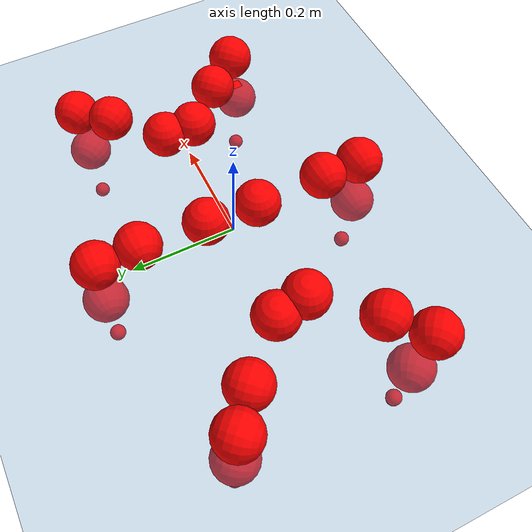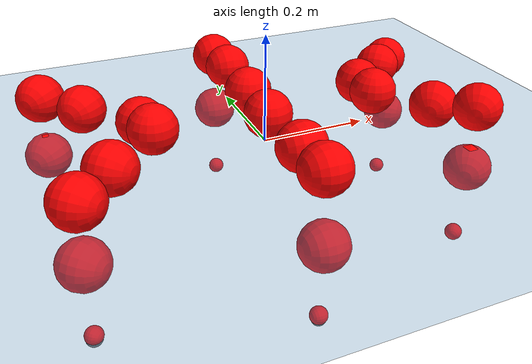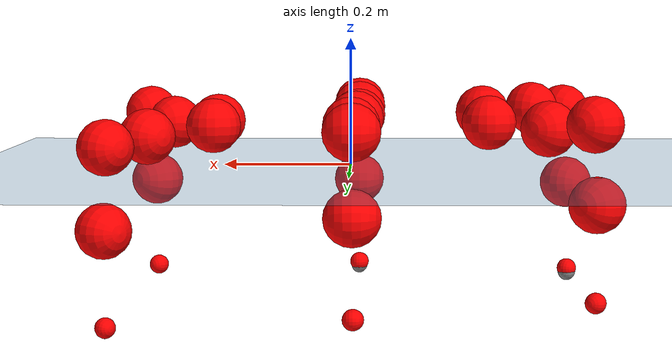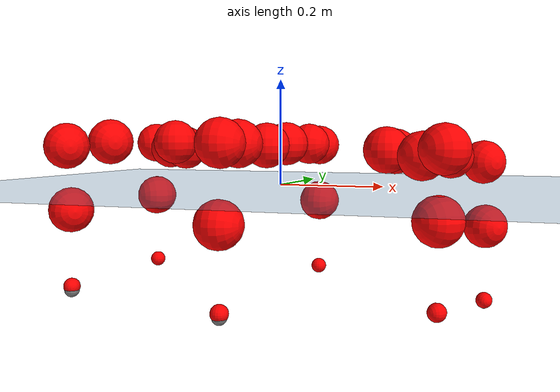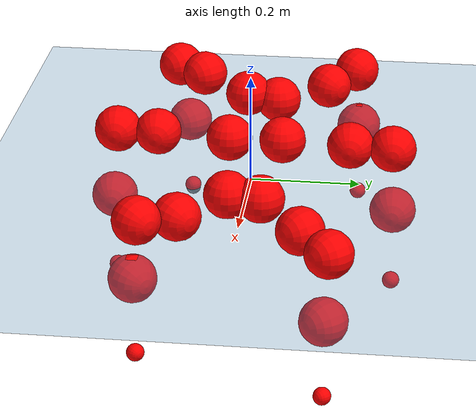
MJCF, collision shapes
<mujoco model="Golem">
  <compiler angle="radian" assetdir="assets" balanceinertia="true" inertiafromgeom="false"/>

  <option timestep="0.005" density="1.2" viscosity="2e-05"/>

  <size nkey="1"/>

  <visual>
    <quality shadowsize="8192"/>
    <map shadowclip="0.5"/>
  </visual>

  <default>
    <default class="/">
      <joint armature="0.01" damping="0.01" frictionloss="0.01"/>
      <geom contype="0" conaffinity="0" group="1" solref="-1000 -80"/>
      <site size="0.01 0.005 0.005" group="5"/>
      <general forcelimited="true" biastype="affine" gainprm="25" biasprm="0 -25 -0.5"/>
      <default class="visual">
        <geom type="mesh" group="2"/>
      </default>
      <default class="collision">
        <geom group="3"/>
      </default>
      <default class="foot">
        <geom size="0.01 0 0" condim="6" group="4" priority="1" solimp="0.015 1 0.01"/>
      </default>
      <default class="reward_collision_sphere">
        <geom group="5" rgba="1 0 0 1"/>
      </default>
    </default>
  </default>

  <asset>
    <texture type="skybox" colorspace="auto" name="//unnamed_texture_0" builtin="gradient" rgb1="0.95 0.95 0.95" rgb2="0.95 0.95 0.95" width="100" height="600"/>
    <texture type="2d" colorspace="auto" name="texplane" builtin="checker" rgb1="0.345 0.575 0.748" rgb2="0.345 0.575 0.748" markrgb="1 1 1" width="512" height="512"/>
    <material name="MatPlane" class="/" texture="texplane" texuniform="true" texrepeat="2 2" specular="0.9"/>
    <mesh name="body" class="/" file="body.stl" scale="0.001 0.001 0.001"/>
    <mesh name="coxa" class="/" file="coxa.stl" scale="0.001 0.001 0.001"/>
    <mesh name="femur" class="/" file="femur.stl" scale="0.001 0.001 0.001"/>
    <mesh name="tibia" class="/" file="tibia.stl" scale="0.001 0.001 0.001"/>
    <mesh name="tarsus" class="/" file="tarsus.stl" scale="0.001 0.001 0.001"/>
  </asset>

  <worldbody>
    <geom name="floor" class="/" size="100 100 0.125" type="plane" group="0" material="MatPlane"/>
    <light name="toplight_shadow" class="/" pos="0 0 5" dir="0.0990148 0.0990148 -0.990148" type="directional" ambient="0.04 0.04 0.04" diffuse="0.55 0.55 0.55" specular="0.12 0.12 0.12"/>
    <light name="toplight_fill" class="/" pos="0 0 5" dir="0.0990148 0.0990148 -0.990148" type="directional" castshadow="false" ambient="0.04 0.04 0.04" diffuse="0.3 0.3 0.3" specular="0.08 0.08 0.08"/>
    <body name="trunk" pos="0.000183174 0.00126132 0.00759009" quat="0.999989 0.0031819 0.00317763 0.00165651">
      <inertial pos="-0.00467202 0.00474331 -0.00834286" quat="0.999836 0.014078 0.00609398 0.00961086" mass="5.43273" diaginertia="0.0517497 0.00208895 0.0174663"/>
      <joint name="//unnamed_joint_0" type="free"/>
      <geom name="//unnamed_geom_1" class="/" pos="0 0 0.0716357" quat="1 0 0 0" type="mesh" rgba="0.9 0.9 0.9 1" mesh="body"/>
      <site name="imu" class="/" pos="0.191495 -0.0498222 0.0474666" size="0.0106617"/>
      <camera name="track" class="/" pos="0 -1.42276 0" quat="0.707107 0.707107 0 0" mode="trackcom"/>
      <camera name="ego_camera" class="/" pos="0.177815 0 0.111931" quat="-0.5 -0.5 0.5 0.5"/>
      <body name="coxa_RR" pos="-0.240185 -0.0587592 0.0723237" quat="0.381568 0.00118031 0.0064321 -0.924318">
        <inertial pos="-0.00877906 -0.00335604 0.00651117" quat="0.999685 -0.0170613 0.00406856 -0.0179316" mass="0.218077" diaginertia="0.0514897 0.00162493 0.0150612"/>
        <joint name="coxa_joint_RR" class="/" pos="0 0 0" axis="-0.00596482 0.0229149 -0.99972" range="-3.23723 3.20533" armature="0.0105512" damping="0.0186174" frictionloss="0.00839686"/>
        <geom name="//unnamed_geom_2" class="/" type="mesh" rgba="0.2 0.2 0.2 1" mesh="coxa"/>
        <geom name="//unnamed_geom_3" class="reward_collision_sphere" size="0.0426466" pos="-0.0410343 0 0"/>
        <body name="femur_RR" pos="0.0884348 0.00537224 0.00204516" quat="0.49955 -0.504045 0.500572 0.495798">
          <inertial pos="-0.000238603 -0.0126429 -0.00617811" quat="0.999318 -0.00496461 0.0253405 0.0263783" mass="0.275845" diaginertia="0.0495761 0.00220442 0.0197694"/>
          <joint name="femur_joint_RR" class="/" pos="0 0 0" axis="-0.00425571 0.00381516 -0.999984" range="-3.21152 3.21205" armature="0.00568393" damping="0" frictionloss="0.010615"/>
          <geom name="//unnamed_geom_4" class="/" type="mesh" rgba="0.9 0.9 0.9 1" mesh="femur"/>
          <geom name="//unnamed_geom_5" class="reward_collision_sphere" size="0.0426466"/>
          <body name="tibia_RR" pos="0.00723117 -0.0818759 -0.00127383" quat="-6.76801e-05 1 -8.67048e-05 -0.000294373">
            <inertial pos="-0.00218073 -0.0116523 -0.00164054" quat="0.999998 -0.00198672 0.000660274 -0.000745246" mass="0.264733" diaginertia="0.0524825 0.0019827 0.0194051"/>
            <joint name="tibia_joint_RR" class="/" pos="0 0 0" axis="0.0550031 -0.0112745 0.998423" stiffness="0.0411582" range="-3.37381 3.09871" armature="0.014483" damping="0.0431095" frictionloss="0.0034477"/>
            <geom name="//unnamed_geom_6" class="/" type="mesh" rgba="0.2 0.2 0.2 1" mesh="tibia"/>
            <geom name="//unnamed_geom_7" class="reward_collision_sphere" size="0.0426466"/>
            <body name="tarsus_RR" pos="0.121442 -0.00893472 0.011534" quat="0.999995 -0.00268334 -0.000414694 0.00153554">
              <inertial pos="0.0768851 0.00180702 -0.00828912" quat="0.507846 0.516753 0.496437 0.47813" mass="0.273803" diaginertia="0.0534239 0.00214518 0.0165832"/>
              <joint name="tarsus_joint_RR" class="/" pos="0 0 0" axis="0.030469 -0.0224187 0.999284" range="-3.01011 3.13949" armature="0.0128848" damping="0" frictionloss="0.0103068"/>
              <geom name="//unnamed_geom_8" class="/" type="mesh" rgba="0.9 0.9 0.9 1" mesh="tarsus"/>
              <geom name="foot_1" class="foot" size="0.0146208" pos="0.153195 0 0" quat="0 -0.707107 0 0.707107"/>
              <geom name="//unnamed_geom_10" class="reward_collision_sphere" size="0.0426466"/>
              <geom name="//unnamed_geom_11" class="reward_collision_sphere" size="0.0159925" pos="0.14704 0 0"/>
              <site name="foot_1" class="foot" pos="0.153195 0 0" quat="0 -0.707107 0 0.707107" size="0.0106617"/>
            </body>
          </body>
        </body>
      </body>
      <body name="coxa_RM" pos="-0.0131333 -0.0829902 0.0683456" quat="0.707798 0.000126659 0.000837927 -0.706414">
        <inertial pos="0.000321725 0.00114766 0.0101107" quat="0.997939 -0.0146187 0.0499074 -0.0376024" mass="0.217804" diaginertia="0.0403743 0.00129948 0.0130523"/>
        <joint name="coxa_joint_RM" class="/" pos="0 0 0" axis="-0.0394239 0.0466638 -0.998132" stiffness="0.0275852" range="-3.13926 3.2623" armature="0.0122086" damping="0.00410026" frictionloss="0.00654213"/>
        <geom name="//unnamed_geom_12" class="/" type="mesh" rgba="0.2 0.2 0.2 1" mesh="coxa"/>
        <geom name="//unnamed_geom_13" class="reward_collision_sphere" size="0.0426466" pos="-0.0410343 0 0"/>
        <body name="femur_RM" pos="0.0908354 -0.00180068 0.00635041" quat="0.500235 -0.49982 0.499938 0.500006">
          <inertial pos="0.000863841 -0.00862333 0.00159699" quat="0.999981 0.00494241 -0.0003618 -0.00355554" mass="0.227081" diaginertia="0.0549286 0.00182739 0.0191509"/>
          <joint name="femur_joint_RM" class="/" pos="0 0 0" axis="0.00125024 0.00437755 -0.99999" stiffness="0.0447938" range="-3.33236 3.02217" armature="0.00632182" damping="0.0160706" frictionloss="0.00487766"/>
          <geom name="//unnamed_geom_14" class="/" type="mesh" rgba="0.9 0.9 0.9 1" mesh="femur"/>
          <geom name="//unnamed_geom_15" class="reward_collision_sphere" size="0.0426466"/>
          <body name="tibia_RM" pos="-0.00260037 -0.0751108 -0.00018457" quat="7.00302e-06 1 5.02539e-05 1.83104e-05">
            <inertial pos="0.00041406 -7.7024e-05 -0.00908302" quat="0.999961 -0.000217007 0.00731373 -0.00488243" mass="0.20633" diaginertia="0.0470414 0.00178025 0.018776"/>
            <joint name="tibia_joint_RM" class="/" pos="0 0 0" axis="0.0136989 -0.0559235 0.998341" range="-3.23535 2.97771" armature="0.0170037" damping="0.0135546" frictionloss="0.00449979"/>
            <geom name="//unnamed_geom_16" class="/" type="mesh" rgba="0.2 0.2 0.2 1" mesh="tibia"/>
            <geom name="//unnamed_geom_17" class="reward_collision_sphere" size="0.0426466"/>
            <body name="tarsus_RM" pos="0.133818 0.0103421 -0.00215825" quat="0.999991 -0.00350272 0.00228988 0.000302716">
              <inertial pos="0.0841508 0.000978043 0.00122044" quat="0.497675 0.499104 0.505408 0.497773" mass="0.18427" diaginertia="0.0407483 0.00156434 0.0148224"/>
              <joint name="tarsus_joint_RM" class="/" pos="0 0 0" axis="-0.0194634 0.012031 0.999738" stiffness="0.00236595" range="-3.22352 3.17738" armature="0.0135189" damping="0" frictionloss="0.00944657"/>
              <geom name="//unnamed_geom_18" class="/" type="mesh" rgba="0.9 0.9 0.9 1" mesh="tarsus"/>
              <geom name="foot_2" class="foot" size="0.0135026" pos="0.153195 0 0" quat="0 -0.707107 0 0.707107"/>
              <geom name="//unnamed_geom_20" class="reward_collision_sphere" size="0.0426466"/>
              <geom name="//unnamed_geom_21" class="reward_collision_sphere" size="0.0159925" pos="0.14704 0 0"/>
              <site name="foot_2" class="foot" pos="0.153195 0 0" quat="0 -0.707107 0 0.707107" size="0.0106617"/>
            </body>
          </body>
        </body>
      </body>
      <body name="coxa_RF" pos="0.238806 -0.0470922 0.0623459" quat="0.923669 -7.60555e-05 -9.29999e-05 -0.383191">
        <inertial pos="0.0119078 0.000158342 0.00900567" quat="0.999334 -0.0268214 0.0218249 -0.0116701" mass="0.231988" diaginertia="0.0388919 0.00149479 0.0147141"/>
        <joint name="coxa_joint_RF" class="/" pos="0 0 0" axis="0.000308631 -0.0101641 -0.999948" stiffness="0.0462118" range="-3.13312 3.28703" armature="0.0113164" damping="0" frictionloss="0.00478914"/>
        <geom name="//unnamed_geom_22" class="/" type="mesh" rgba="0.2 0.2 0.2 1" mesh="coxa"/>
        <geom name="//unnamed_geom_23" class="reward_collision_sphere" size="0.0426466" pos="-0.0410343 0 0"/>
        <body name="femur_RF" pos="0.069901 0.00137097 -0.00675862" quat="0.5035 -0.497298 0.500859 0.49832">
          <inertial pos="-0.000985702 0.00100045 0.00240248" quat="0.999495 1.91589e-05 -0.0108287 -0.0298656" mass="0.235558" diaginertia="0.0530954 0.00200138 0.0190821"/>
          <joint name="femur_joint_RF" class="/" pos="0 0 0" axis="0.0179064 -0.00742485 -0.999812" stiffness="0.00151134" range="-3.24701 3.16513" armature="0.0100439" damping="0.0156416" frictionloss="0.0103772"/>
          <geom name="//unnamed_geom_24" class="/" type="mesh" rgba="0.9 0.9 0.9 1" mesh="femur"/>
          <geom name="//unnamed_geom_25" class="reward_collision_sphere" size="0.0426466"/>
          <body name="tibia_RF" pos="-0.0137011 -0.0765873 -0.00994227" quat="0.00133904 0.999998 0.000338874 -0.00168824">
            <inertial pos="-0.00256162 0.011326 0.00949176" quat="0.998526 -0.0418799 0.0041534 0.034261" mass="0.264977" diaginertia="0.0587394 0.00217835 0.0173095"/>
            <joint name="tibia_joint_RF" class="/" pos="0 0 0" axis="0.0414598 -0.0344371 0.998547" stiffness="0.0655894" range="-3.02359 3.14666" armature="0.011119" damping="0.0384578" frictionloss="0.0143714"/>
            <geom name="//unnamed_geom_26" class="/" type="mesh" rgba="0.2 0.2 0.2 1" mesh="tibia"/>
            <geom name="//unnamed_geom_27" class="reward_collision_sphere" size="0.0426466"/>
            <body name="tarsus_RF" pos="0.115301 0.00349557 0.0123443" quat="1 1.5575e-05 -1.66114e-05 1.52715e-05">
              <inertial pos="0.0797771 -0.00132953 0.000146785" quat="0.498649 0.486715 0.498889 0.515333" mass="0.260787" diaginertia="0.0546248 0.00218894 0.0185318"/>
              <joint name="tarsus_joint_RF" class="/" pos="0 0 0" axis="0.0605804 -0.0228083 0.997903" range="-3.12041 3.17934" armature="0.0129125" damping="0.0130118" frictionloss="0.00714044"/>
              <geom name="//unnamed_geom_28" class="/" type="mesh" rgba="0.9 0.9 0.9 1" mesh="tarsus"/>
              <geom name="foot_3" class="foot" size="0.0084163" pos="0.153195 0 0" quat="0 -0.707107 0 0.707107"/>
              <geom name="//unnamed_geom_30" class="reward_collision_sphere" size="0.0426466"/>
              <geom name="//unnamed_geom_31" class="reward_collision_sphere" size="0.0159925" pos="0.14704 0 0"/>
              <site name="foot_3" class="foot" pos="0.153195 0 0" quat="0 -0.707107 0 0.707107" size="0.0106617"/>
            </body>
          </body>
        </body>
      </body>
      <body name="coxa_LR" pos="-0.246577 0.0569022 0.0596806" quat="0.378473 -0.00157299 -0.00196567 0.925609">
        <inertial pos="0.005804 -0.00961911 0.0103166" quat="0.999958 -0.0084315 -0.00107131 -0.00352629" mass="0.235926" diaginertia="0.0489475 0.00196117 0.0171489"/>
        <joint name="coxa_joint_LR" class="/" pos="0 0 0" axis="0.0269797 -0.0357425 -0.998997" range="-3.03284 2.91609" armature="0.00982758" damping="0.00733633" frictionloss="0.00615264"/>
        <geom name="//unnamed_geom_32" class="/" type="mesh" rgba="0.2 0.2 0.2 1" mesh="coxa"/>
        <geom name="//unnamed_geom_33" class="reward_collision_sphere" size="0.0426466" pos="-0.0410343 0 0"/>
        <body name="femur_LR" pos="0.0821299 -0.00644205 -0.00359998" quat="0.501083 -0.498152 0.500815 0.499945">
          <inertial pos="-0.000228077 -0.00834753 -0.00357286" quat="0.998204 -0.0521399 0.0277076 0.0101028" mass="0.266551" diaginertia="0.0438254 0.001957 0.0198265"/>
          <joint name="femur_joint_LR" class="/" pos="0 0 0" axis="-0.0536097 0.0449324 0.997551" stiffness="0.000968208" range="-3.02659 3.05051" armature="0.00408263" damping="0" frictionloss="0.0113106"/>
          <geom name="//unnamed_geom_34" class="/" type="mesh" rgba="0.9 0.9 0.9 1" mesh="femur"/>
          <geom name="//unnamed_geom_35" class="reward_collision_sphere" size="0.0426466"/>
          <body name="tibia_LR" pos="-0.00993059 -0.0798433 0.00876432" quat="-0.000229386 0.999998 0.000789824 -0.00180491">
            <inertial pos="0.00603935 -0.0039482 -0.00935969" quat="0.999169 -0.00982147 -0.024117 0.03136" mass="0.203441" diaginertia="0.0455061 0.00165181 0.0181005"/>
            <joint name="tibia_joint_LR" class="/" pos="0 0 0" axis="0.00247637 -0.0011588 -0.999996" range="-3.37986 2.96815" armature="0.0161322" damping="0.00580707" frictionloss="0.0107245"/>
            <geom name="//unnamed_geom_36" class="/" type="mesh" rgba="0.2 0.2 0.2 1" mesh="tibia"/>
            <geom name="//unnamed_geom_37" class="reward_collision_sphere" size="0.0426466"/>
            <body name="tarsus_LR" pos="0.119133 0.00633393 0.000994589" quat="1 7.88062e-05 9.8059e-05 -5.33314e-05">
              <inertial pos="0.0815791 0.010575 -0.00165749" quat="0.499309 0.500621 0.500053 0.500016" mass="0.289734" diaginertia="0.0504046 0.00158709 0.0169554"/>
              <joint name="tarsus_joint_LR" class="/" pos="0 0 0" axis="-0.00190019 0.0019384 -0.999996" range="-3.10126 2.99643" armature="0.0110082" damping="0.0273613" frictionloss="0.0143616"/>
              <geom name="//unnamed_geom_38" class="/" type="mesh" rgba="0.9 0.9 0.9 1" mesh="tarsus"/>
              <geom name="foot_4" class="foot" size="0.00788604" pos="0.153195 0 0" quat="0.707107 0 -0.707107 0"/>
              <geom name="//unnamed_geom_40" class="reward_collision_sphere" size="0.0426466"/>
              <geom name="//unnamed_geom_41" class="reward_collision_sphere" size="0.0159925" pos="0.14704 0 0"/>
              <site name="foot_4" class="foot" pos="0.153195 0 0" quat="0.707107 0 -0.707107 0" size="0.0106617"/>
            </body>
          </body>
        </body>
      </body>
      <body name="coxa_LM" pos="-0.00963578 0.0971883 0.0695823" quat="0.708014 -0.000412023 -0.000120746 0.706198">
        <inertial pos="-0.000103171 0.000568682 0.0117658" quat="0.999969 0.0030864 -0.00375755 -0.00612701" mass="0.246877" diaginertia="0.0429654 0.00172248 0.0166415"/>
        <joint name="coxa_joint_LM" class="/" pos="0 0 0" axis="-0.0291029 -0.0127169 -0.999496" range="-3.11089 3.11456" armature="0.00845987" damping="0.0497148" frictionloss="0.0105067"/>
        <geom name="//unnamed_geom_42" class="/" type="mesh" rgba="0.2 0.2 0.2 1" mesh="coxa"/>
        <geom name="//unnamed_geom_43" class="reward_collision_sphere" size="0.0426466" pos="-0.0410343 0 0"/>
        <body name="femur_LM" pos="0.0834436 -0.00638568 -0.00239182" quat="0.500094 -0.500219 0.499763 0.499924">
          <inertial pos="0.0086175 0.00106555 0.0132186" quat="0.999028 -0.0267652 -0.0236459 0.0258215" mass="0.254221" diaginertia="0.0514015 0.00192873 0.0189871"/>
          <joint name="femur_joint_LM" class="/" pos="0 0 0" axis="-0.0319495 -0.000550576 0.999489" range="-3.19158 3.39529" armature="0.0141021" damping="0.0232776" frictionloss="0.0159949"/>
          <geom name="//unnamed_geom_44" class="/" type="mesh" rgba="0.9 0.9 0.9 1" mesh="femur"/>
          <geom name="//unnamed_geom_45" class="reward_collision_sphere" size="0.0426466"/>
          <body name="tibia_LM" pos="0.00425076 -0.0775688 0.00118024" quat="0.00212912 0.999996 0.000838972 0.00187473">
            <inertial pos="-0.00521123 0.00132476 -0.00124027" quat="0.999978 -0.000182662 0.00363163 0.00563573" mass="0.260346" diaginertia="0.0562392 0.00209257 0.0201901"/>
            <joint name="tibia_joint_LM" class="/" pos="0 0 0" axis="-0.00251024 -0.0498591 -0.998753" range="-3.33337 3.26164" armature="0.00356572" damping="0.0478743" frictionloss="0.00555629"/>
            <geom name="//unnamed_geom_46" class="/" type="mesh" rgba="0.2 0.2 0.2 1" mesh="tibia"/>
            <geom name="//unnamed_geom_47" class="reward_collision_sphere" size="0.0426466"/>
            <body name="tarsus_LM" pos="0.123306 0.00203135 0.00017106" quat="1 -3.50746e-05 -0.000385885 0.00053057">
              <inertial pos="0.0873966 0.00737297 0.0016999" quat="0.498634 0.509731 0.515041 0.47568" mass="0.278926" diaginertia="0.0579176 0.00249713 0.0215859"/>
              <joint name="tarsus_joint_LM" class="/" pos="0 0 0" axis="-0.0342322 0.00366893 -0.999407" range="-3.15035 3.12298" armature="0.0120143" damping="0" frictionloss="0.00391634"/>
              <geom name="//unnamed_geom_48" class="/" type="mesh" rgba="0.9 0.9 0.9 1" mesh="tarsus"/>
              <geom name="foot_5" class="foot" size="0.00801012" pos="0.153195 0 0" quat="0.707107 0 -0.707107 0"/>
              <geom name="//unnamed_geom_50" class="reward_collision_sphere" size="0.0426466"/>
              <geom name="//unnamed_geom_51" class="reward_collision_sphere" size="0.0159925" pos="0.14704 0 0"/>
              <site name="foot_5" class="foot" pos="0.153195 0 0" quat="0.707107 0 -0.707107 0" size="0.0106617"/>
            </body>
          </body>
        </body>
      </body>
      <body name="coxa_LF" pos="0.242103 0.0690812 0.0583405" quat="0.924516 0.000903411 0.000424551 0.381142">
        <inertial pos="0.011604 0.0133261 0.00818165" quat="0.999868 0.0151875 0.00560149 -0.00148579" mass="0.266572" diaginertia="0.0533938 0.00236985 0.0174047"/>
        <joint name="coxa_joint_LF" class="/" pos="0 0 0" axis="0.0578019 -0.0041045 -0.99832" stiffness="0.00209553" range="-3.00742 3.14309" armature="0.00895979" damping="0" frictionloss="0.0154192"/>
        <geom name="//unnamed_geom_52" class="/" type="mesh" rgba="0.2 0.2 0.2 1" mesh="coxa"/>
        <geom name="//unnamed_geom_53" class="reward_collision_sphere" size="0.0426466" pos="-0.0410343 0 0"/>
        <body name="femur_LF" pos="0.0794973 -0.0110221 -0.0105306" quat="0.499248 -0.501759 0.502207 0.496767">
          <inertial pos="0.00134557 0.00688081 -0.0035237" quat="0.999999 -0.000381844 -0.000381321 -0.00149357" mass="0.26256" diaginertia="0.0624523 0.00207084 0.0197851"/>
          <joint name="femur_joint_LF" class="/" pos="0 0 0" axis="0.0559449 0.0063163 0.998414" range="-3.02763 2.95517" armature="0.00969503" damping="0.00802411" frictionloss="0.0100027"/>
          <geom name="//unnamed_geom_54" class="/" type="mesh" rgba="0.9 0.9 0.9 1" mesh="femur"/>
          <geom name="//unnamed_geom_55" class="reward_collision_sphere" size="0.0426466"/>
          <body name="tibia_LF" pos="0.0122503 -0.0768217 -0.000885245" quat="-0.00111674 0.999995 0.00201642 -0.00208968">
            <inertial pos="-0.00717069 -0.0110182 0.00616521" quat="0.999999 0.000568079 -0.000373497 0.0012556" mass="0.227161" diaginertia="0.0543554 0.00185718 0.0196997"/>
            <joint name="tibia_joint_LF" class="/" pos="0 0 0" axis="-0.030317 -0.0229524 -0.999277" stiffness="0.0576832" range="-3.13338 3.32445" armature="0.0126824" damping="0.038721" frictionloss="0.00907344"/>
            <geom name="//unnamed_geom_56" class="/" type="mesh" rgba="0.2 0.2 0.2 1" mesh="tibia"/>
            <geom name="//unnamed_geom_57" class="reward_collision_sphere" size="0.0426466"/>
            <body name="tarsus_LF" pos="0.126091 -0.000562662 0.00901271" quat="1 -0.000239605 0.000319629 0.000193636">
              <inertial pos="0.0955949 -0.00220555 0.00295406" quat="0.464691 0.499416 0.554074 0.477126" mass="0.253086" diaginertia="0.0473338 0.0017692 0.0173782"/>
              <joint name="tarsus_joint_LF" class="/" pos="0 0 0" axis="0.0659444 0.023047 -0.997557" range="-3.25455 3.30684" armature="0.0117354" damping="0.0499152" frictionloss="0.0135659"/>
              <geom name="//unnamed_geom_58" class="/" type="mesh" rgba="0.9 0.9 0.9 1" mesh="tarsus"/>
              <geom name="foot_6" class="foot" size="0.0102755" pos="0.153195 0 0" quat="0.707107 0 -0.707107 0"/>
              <geom name="//unnamed_geom_60" class="reward_collision_sphere" size="0.0426466"/>
              <geom name="//unnamed_geom_61" class="reward_collision_sphere" size="0.0159925" pos="0.14704 0 0"/>
              <site name="foot_6" class="foot" pos="0.153195 0 0" quat="0.707107 0 -0.707107 0" size="0.0106617"/>
            </body>
          </body>
        </body>
      </body>
    </body>
  </worldbody>

  <contact>
    <pair class="/" geom1="floor" geom2="foot_1" name="//unnamed_contact_0"/>
    <pair class="/" geom1="floor" geom2="foot_2" name="//unnamed_contact_1"/>
    <pair class="/" geom1="floor" geom2="foot_3" name="//unnamed_contact_2"/>
    <pair class="/" geom1="floor" geom2="foot_4" name="//unnamed_contact_3"/>
    <pair class="/" geom1="floor" geom2="foot_5" name="//unnamed_contact_4"/>
    <pair class="/" geom1="floor" geom2="foot_6" name="//unnamed_contact_5"/>
  </contact>

  <actuator>
    <general name="coxa_joint_RR" class="/" joint="coxa_joint_RR" forcerange="-7.58152 7.58152" gainprm="23.9094" biasprm="0 -23.9094 -0.471149"/>
    <general name="femur_joint_RR" class="/" joint="femur_joint_RR" forcerange="-6.93737 6.93737" gainprm="23.9094" biasprm="0 -23.9094 -0.471149"/>
    <general name="tibia_joint_RR" class="/" joint="tibia_joint_RR" forcerange="-7.3843 7.3843" gainprm="23.9094" biasprm="0 -23.9094 -0.471149"/>
    <general name="tarsus_joint_RR" class="/" joint="tarsus_joint_RR" forcerange="-4.98734 4.98734" gainprm="23.9094" biasprm="0 -23.9094 -0.471149"/>
    <general name="coxa_joint_RM" class="/" joint="coxa_joint_RM" forcerange="-9.10301 9.10301" gainprm="23.9094" biasprm="0 -23.9094 -0.471149"/>
    <general name="femur_joint_RM" class="/" joint="femur_joint_RM" forcerange="-4.95679 4.95679" gainprm="23.9094" biasprm="0 -23.9094 -0.471149"/>
    <general name="tibia_joint_RM" class="/" joint="tibia_joint_RM" forcerange="-6.84119 6.84119" gainprm="23.9094" biasprm="0 -23.9094 -0.471149"/>
    <general name="tarsus_joint_RM" class="/" joint="tarsus_joint_RM" forcerange="-6.34156 6.34156" gainprm="23.9094" biasprm="0 -23.9094 -0.471149"/>
    <general name="coxa_joint_RF" class="/" joint="coxa_joint_RF" forcerange="-10.5693 10.5693" gainprm="23.9094" biasprm="0 -23.9094 -0.471149"/>
    <general name="femur_joint_RF" class="/" joint="femur_joint_RF" forcerange="-7.53883 7.53883" gainprm="23.9094" biasprm="0 -23.9094 -0.471149"/>
    <general name="tibia_joint_RF" class="/" joint="tibia_joint_RF" forcerange="-6.6217 6.6217" gainprm="23.9094" biasprm="0 -23.9094 -0.471149"/>
    <general name="tarsus_joint_RF" class="/" joint="tarsus_joint_RF" forcerange="-7.42977 7.42977" gainprm="23.9094" biasprm="0 -23.9094 -0.471149"/>
    <general name="coxa_joint_LR" class="/" joint="coxa_joint_LR" forcerange="-8.20951 8.20951" gainprm="23.9094" biasprm="0 -23.9094 -0.471149"/>
    <general name="femur_joint_LR" class="/" joint="femur_joint_LR" forcerange="-7.68945 7.68945" gainprm="23.9094" biasprm="0 -23.9094 -0.471149"/>
    <general name="tibia_joint_LR" class="/" joint="tibia_joint_LR" forcerange="-7.8246 7.8246" gainprm="23.9094" biasprm="0 -23.9094 -0.471149"/>
    <general name="tarsus_joint_LR" class="/" joint="tarsus_joint_LR" forcerange="-7.99594 7.99594" gainprm="23.9094" biasprm="0 -23.9094 -0.471149"/>
    <general name="coxa_joint_LM" class="/" joint="coxa_joint_LM" forcerange="-8.38152 8.38152" gainprm="23.9094" biasprm="0 -23.9094 -0.471149"/>
    <general name="femur_joint_LM" class="/" joint="femur_joint_LM" forcerange="-8.26104 8.26104" gainprm="23.9094" biasprm="0 -23.9094 -0.471149"/>
    <general name="tibia_joint_LM" class="/" joint="tibia_joint_LM" forcerange="-7.72341 7.72341" gainprm="23.9094" biasprm="0 -23.9094 -0.471149"/>
    <general name="tarsus_joint_LM" class="/" joint="tarsus_joint_LM" forcerange="-6.40956 6.40956" gainprm="23.9094" biasprm="0 -23.9094 -0.471149"/>
    <general name="coxa_joint_LF" class="/" joint="coxa_joint_LF" forcerange="-9.57846 9.57846" gainprm="23.9094" biasprm="0 -23.9094 -0.471149"/>
    <general name="femur_joint_LF" class="/" joint="femur_joint_LF" forcerange="-8.02736 8.02736" gainprm="23.9094" biasprm="0 -23.9094 -0.471149"/>
    <general name="tibia_joint_LF" class="/" joint="tibia_joint_LF" forcerange="-8.21335 8.21335" gainprm="23.9094" biasprm="0 -23.9094 -0.471149"/>
    <general name="tarsus_joint_LF" class="/" joint="tarsus_joint_LF" forcerange="-8.14276 8.14276" gainprm="23.9094" biasprm="0 -23.9094 -0.471149"/>
  </actuator>

  <sensor>
    <gyro site="imu" name="imu_angular_velocity"/>
    <velocimeter site="imu" name="imu_linear_velocity"/>
    <framelinvel objtype="site" objname="foot_1" name="foot_1_global_linear_velocity"/>
    <framelinvel objtype="site" objname="foot_2" name="foot_2_global_linear_velocity"/>
    <framelinvel objtype="site" objname="foot_3" name="foot_3_global_linear_velocity"/>
    <framelinvel objtype="site" objname="foot_4" name="foot_4_global_linear_velocity"/>
    <framelinvel objtype="site" objname="foot_5" name="foot_5_global_linear_velocity"/>
    <framelinvel objtype="site" objname="foot_6" name="foot_6_global_linear_velocity"/>
  </sensor>

  <keyframe>
    <key name="home" qpos="0 0 0.1457 1 0 0 0 0 0 0 0 0 0 0 0 0 0 0 0 0 0 0 0 0 0 0 0 0 0 0 0"/>
  </keyframe>
</mujoco>
